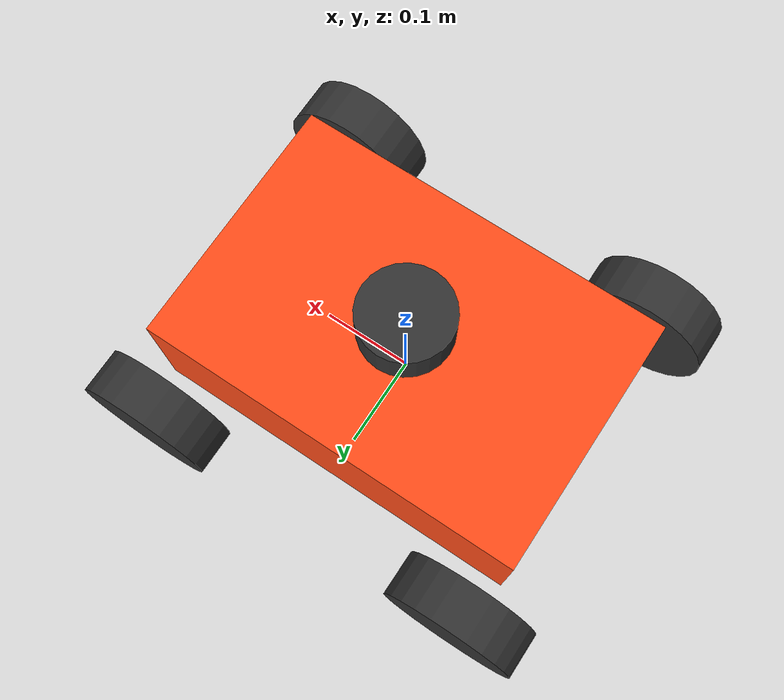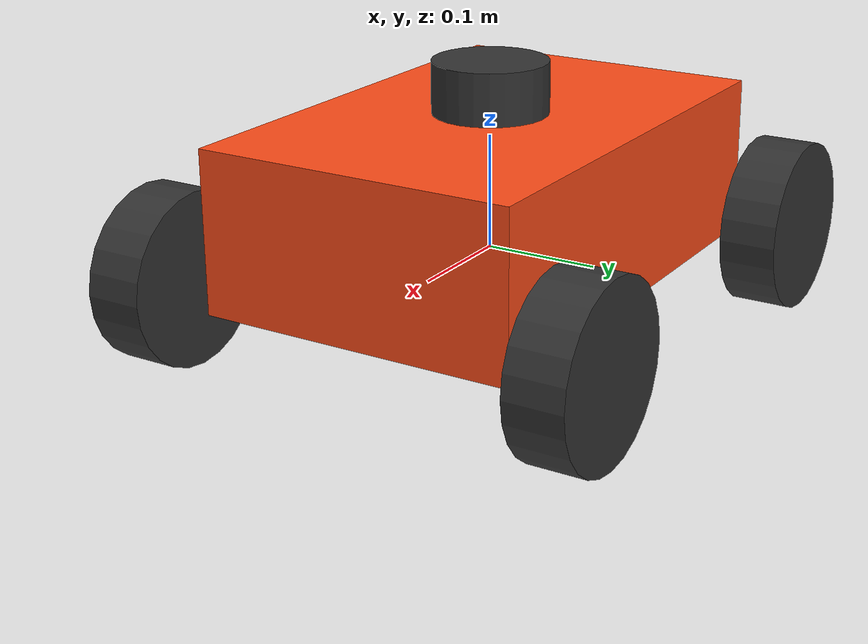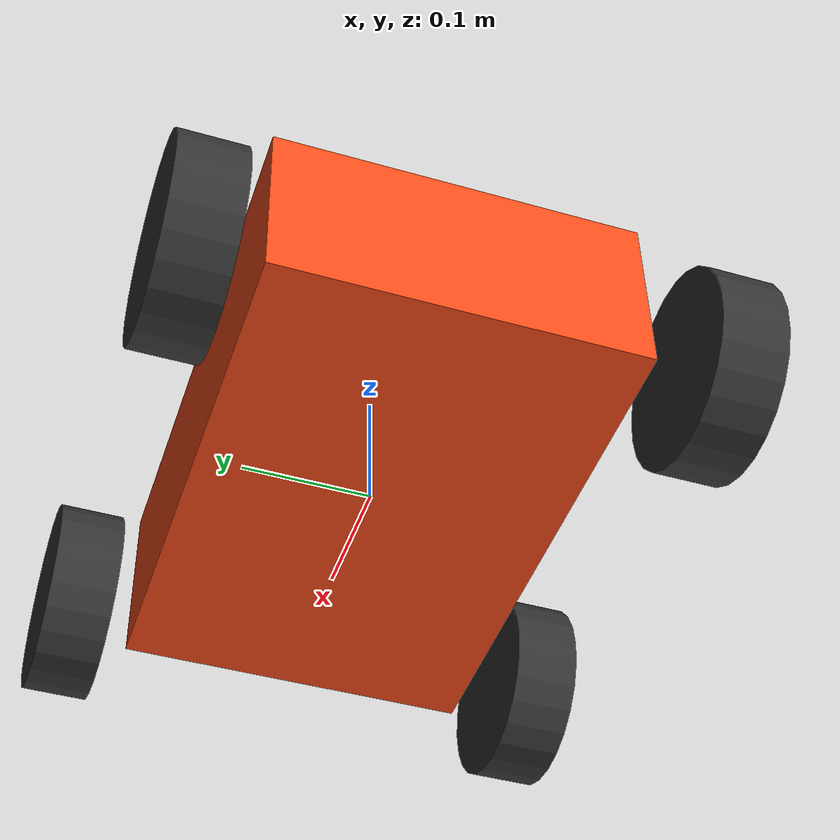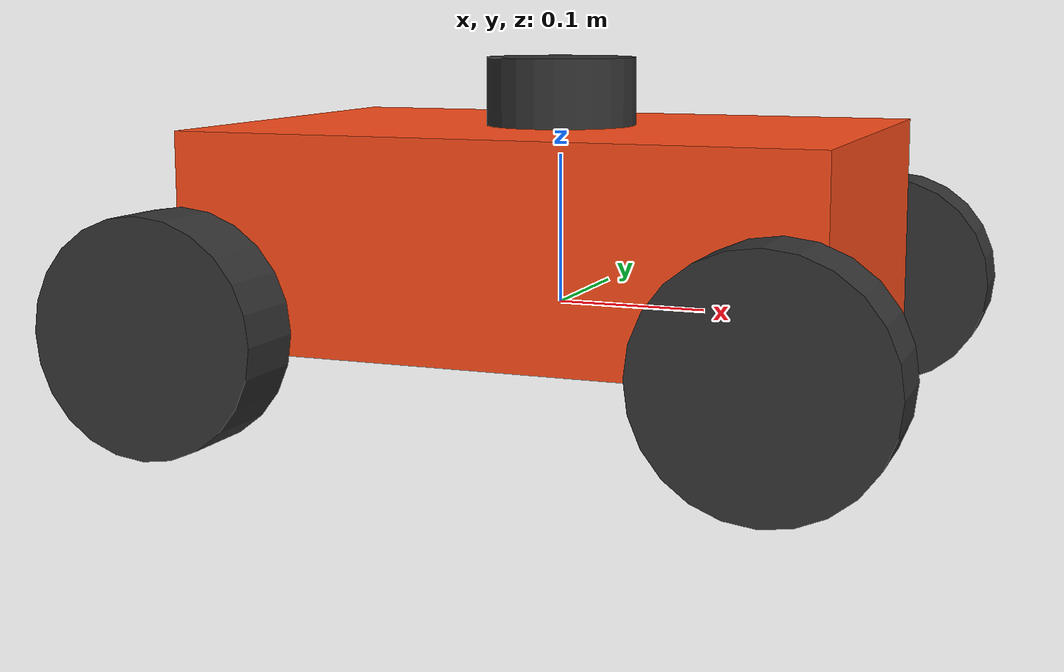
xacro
<?xml version="1.0"?>
<robot xmlns:xacro="http://www.ros.org/wiki/xacro"  name="roboost_mecanum_robot">

    <xacro:include filename="res/roboost_materials.xacro"/>

    <!-- TODO: determine values -->
    <xacro:property name="chassis_length" value="0.42"/>
    <xacro:property name="chassis_width" value="0.28"/>
    <xacro:property name="chassis_height" value="0.14"/>
    <xacro:property name="chassis_mass" value="20.0"/>
    <xacro:property name="chassis_inertia" value="4.0"/>

    <xacro:property name="wheel_radius" value="0.075"/>
    <xacro:property name="wheel_width" value="0.05"/>
    <xacro:property name="wheel_mass" value="1.0"/>
    <xacro:property name="wheel_inertia" value="0.1"/>

    <xacro:property name="wheelbase" value="0.38"/>
    <xacro:property name="track" value="0.32"/>

    <link name="base_link">
        <visual>
            <geometry>
                <box size="${chassis_length} ${chassis_width} ${chassis_height}"/>
            </geometry>

            <origin xyz="0 0 0.05" rpy="0.0 0.0 0.0"/>

            <material name="orange"/>
        </visual>
        <collision>
            <geometry>
                <box size="${chassis_length} ${chassis_width} ${chassis_height}"/>
            </geometry>

            <origin xyz="0.0 0.0 0.0" rpy="0.0 0.0 0.0"/>
        </collision>
        <inertial>
            <mass value="${chassis_mass}"/>
            <origin xyz="0.0 0.0 ${chassis_height / 2}" rpy="0.0 0.0 0.0"/>
            <inertia ixx="${chassis_inertia}" ixy="0.0" ixz="0.0" iyy="${chassis_inertia}" iyz="0.0" izz="${chassis_inertia}"/>
        </inertial>
    </link>

    <link name="wheel_front_left_link">
        <visual>
            <geometry>
                <cylinder radius="${wheel_radius}" length="${wheel_width}"/>
            </geometry>

            <origin xyz="0.0 0.0 0.03" rpy="0.0 0.0 0.0"/>

            <material name="grey"/>
        </visual>
        <collision>
            <geometry>
                <cylinder radius="${wheel_radius}" length="${wheel_width}"/>
            </geometry>

            <origin xyz="0.0 0.0 0.03" rpy="0.0 0.0 0.0"/>
        </collision>
        <inertial>
            <mass value="1.0"/>
            <origin xyz="0.0 0.0 0.03" rpy="0.0 0.0 0.0"/>
            <inertia ixx="0.1" ixy="0.0" ixz="0.0" iyy="0.1" iyz="0.0" izz="0.1"/>
        </inertial>
    </link>

    <link name="wheel_front_right_link">
        <visual>
            <geometry>
                <cylinder radius="${wheel_radius}" length="${wheel_width}"/>
            </geometry>

            <origin xyz="0.0 0.0 0.03" rpy="0.0 0.0 0.0"/>

            <material name="grey"/>
        </visual>
        <collision>
            <geometry>
                <cylinder radius="${wheel_radius}" length="${wheel_width}"/>
            </geometry>

            <origin xyz="0.0 0.0 0.03" rpy="0.0 0.0 0.0"/>
        </collision>
        <inertial>
            <mass value="1.0"/>
            <origin xyz="0.0 0.0 0.03" rpy="0.0 0.0 0.0"/>
            <inertia ixx="0.1" ixy="0.0" ixz="0.0" iyy="0.1" iyz="0.0" izz="0.1"/>
        </inertial>
    </link>

    <link name="wheel_back_left_link">
        <visual>
            <geometry>
                <cylinder radius="${wheel_radius}" length="${wheel_width}"/>
            </geometry>

            <origin xyz="0.0 0.0 0.03" rpy="0.0 0.0 0.0"/>

            <material name="grey"/>
        </visual>
        <collision>
            <geometry>
                <cylinder radius="${wheel_radius}" length="${wheel_width}"/>
            </geometry>

            <origin xyz="0.0 0.0 0.03" rpy="0.0 0.0 0.0"/>
        </collision>
        <inertial>
            <mass value="1.0"/>
            <origin xyz="0.0 0.0 0.03" rpy="0.0 0.0 0.0"/>
            <inertia ixx="0.1" ixy="0.0" ixz="0.0" iyy="0.1" iyz="0.0" izz="0.1"/>
        </inertial>
    </link>

    <link name="wheel_back_right_link">
        <visual>
            <geometry>
                <cylinder radius="${wheel_radius}" length="${wheel_width}"/>
            </geometry>

            <origin xyz="0.0 0.0 0.03" rpy="0.0 0.0 0.0"/>

            <material name="grey"/>
        </visual>
        <collision>
            <geometry>
                <cylinder radius="${wheel_radius}" length="${wheel_width}"/>
            </geometry>

            <origin xyz="0.0 0.0 0.03" rpy="0.0 0.0 0.0"/>
        </collision>
        <inertial>
            <mass value="1.0"/>
            <origin xyz="0.0 0.0 0.0" rpy="0.0 0.0 0.0"/>
            <inertia ixx="0.1" ixy="0.0" ixz="0.0" iyy="0.1" iyz="0.0" izz="0.1"/>
        </inertial>
    </link>

    <link name="lidar_link">
        <visual>
            <geometry>
                <cylinder radius="0.05" length="0.05"/>
            </geometry>

            <origin xyz="0.0 0.0 0.0" rpy="0.0 0.0 0.0"/>

            <material name="grey"/>
        </visual>
        <collision>
            <geometry>
                <cylinder radius="0.05" length="0.05"/>
            </geometry>

            <origin xyz="0.0 0.0 0.0" rpy="0.0 0.0 0.0"/>
        </collision>
        <inertial>
            <mass value="1.0"/>
            <origin xyz="0.0 0.0 0.0" rpy="0.0 0.0 0.0"/>
            <inertia ixx="0.1" ixy="0.0" ixz="0.0" iyy="0.1" iyz="0.0" izz="0.1"/>
        </inertial>
    </link>

    <joint name="wheel_front_left_joint" type="continuous">
        <parent link="base_link"/>
        <child link="wheel_front_left_link"/>
        <origin xyz="${wheelbase / 2} ${track / 2} 0.0" rpy="${pi * 3 / 2} 0.0 0.0"/>
        <axis xyz="0.0 0.0 1.0"/>
        <limit effort="1000.0" velocity="1000.0"/>
    </joint>

    <joint name="wheel_front_right_joint" type="continuous">
        <parent link="base_link"/>
        <child link="wheel_front_right_link"/>
        <origin xyz="${wheelbase / 2} -${track / 2} 0.0" rpy="${pi / 2} 0.0 0.0"/>
        <axis xyz="0.0 0.0 1.0"/>
        <limit effort="1000.0" velocity="1000.0"/>
    </joint>

    <joint name="wheel_back_left_joint" type="continuous">
        <parent link="base_link"/>
        <child link="wheel_back_left_link"/>
        <origin xyz="-${wheelbase / 2} ${track / 2} 0.0" rpy="${pi * 3 / 2} 0.0 0.0"/>
        <axis xyz="0.0 0.0 1.0"/>
        <limit effort="1000.0" velocity="1000.0"/>
    </joint>

    <joint name="wheel_back_right_joint" type="continuous">
        <parent link="base_link"/>
        <child link="wheel_back_right_link"/>
        <origin xyz="-${wheelbase / 2} -${track / 2} 0.0" rpy="${pi / 2} 0.0 0.0"/>
        <axis xyz="0.0 0.0 1.0"/>
        <limit effort="1000.0" velocity="1000.0"/>
    </joint>

    <joint name="lidar_joint" type="fixed">
        <parent link="base_link"/>
        <child link="lidar_link"/>
        <origin xyz="0.0 0.0 ${chassis_height}" rpy="${pi} 0.0 ${pi * 3 / 2}"/>
    </joint>
</robot>

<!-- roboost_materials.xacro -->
<robot xmlns:xacro="http://www.ros.org/wiki/xacro">
    <material name="grey">
        <color rgba="0.2 0.2 0.2 1"/>
    </material>

    <material name="white">
        <color rgba="1 1 1 1"/>
    </material>

    <material name="orange">
        <color rgba="1 0.3 0.1 1"/>
    </material>

    <material name="blue">
        <color rgba="0 0 1 1"/>
    </material>
</robot>
